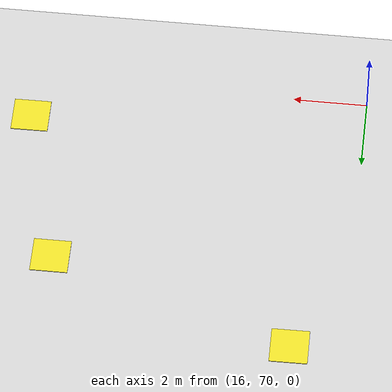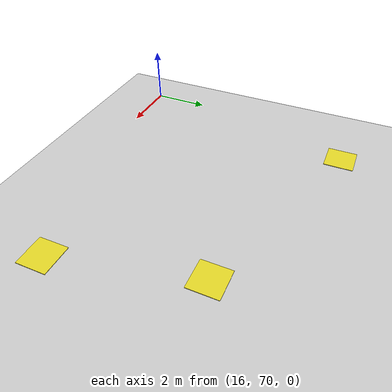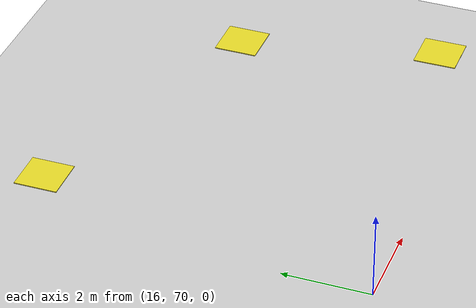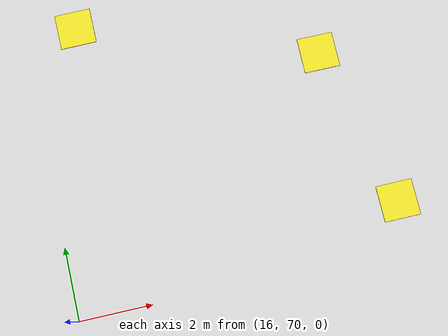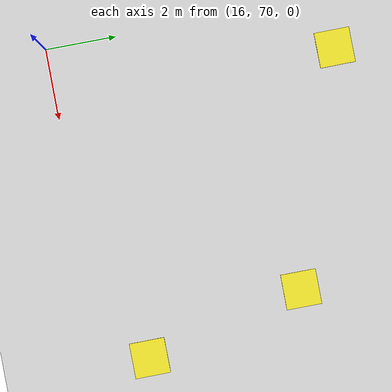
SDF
<sdf version="1.6">
 <world name="default">
  <model name="ground_plane">
   <pose>0 0 -1 0 -0 0</pose>
   <static>1</static>
   <link name="link">
    <collision name="collision">
     <geometry><plane><normal>0 0 1</normal><size>100 100</size></plane></geometry>
     <surface><friction><ode><mu>100</mu><mu2>50</mu2></ode></friction></surface>
    </collision>
    <visual name="visual">
     <cast_shadows>0</cast_shadows>
     <geometry><plane><normal>0 0 1</normal><size>100 100</size></plane></geometry>
     <material>
      <script><uri>file://media/materials/scripts/gazebo.material</uri><name>Gazebo/Grey</name></script>
     </material>
    </visual>
   </link>
  </model>
  <model name="YAC_airport_clone_0">
   <link name="my_box">
    <inertial>
     <mass>1</mass>
     <inertia><ixx>1</ixx><ixy>0</ixy><ixz>0</ixz><iyy>100</iyy><iyz>0</iyz><izz>1</izz></inertia>
    </inertial>
    <visual name="my_box_visual">
     <pose>0 0 1 0 -0 0</pose>
     <geometry><box><size>1 1 0.02</size></box></geometry>
     <material>
      <script><name>Gazebo/Yellow</name><uri>file://media/materials/scripts/gazebo.material</uri></script>
      <ambient>1 1 0 1</ambient>
      <diffuse>1 1 0 1</diffuse>
      <specular>0 0 0 0</specular>
      <emissive>0 0 0 1</emissive>
      <shader type="vertex"><normal_map>__default__</normal_map></shader>
     </material>
    </visual>
    <collision name="my_box_collision">
     <pose>0 0 1 0 -0 0</pose>
     <geometry><box><size>1 1 0.02</size></box></geometry>
     <surface>
      <friction>
       <ode><mu>1</mu><mu2>1</mu2><fdir1>0 0 0</fdir1><slip1>0</slip1><slip2>0</slip2></ode>
       <torsional>
        <coefficient>1</coefficient>
        <patch_radius>0</patch_radius>
        <surface_radius>0</surface_radius>
        <use_patch_radius>1</use_patch_radius>
        <ode><slip>0</slip></ode>
       </torsional>
      </friction>
      <bounce><restitution_coefficient>0</restitution_coefficient><threshold>1e+06</threshold></bounce>
      <contact>
       <collide_without_contact>0</collide_without_contact>
       <collide_without_contact_bitmask>1</collide_without_contact_bitmask>
       <collide_bitmask>1</collide_bitmask>
       <ode>
        <soft_cfm>0</soft_cfm>
        <soft_erp>0.2</soft_erp>
        <kp>1e+13</kp>
        <kd>1</kd>
        <max_vel>0.01</max_vel>
        <min_depth>0</min_depth>
       </ode>
       <bullet>
        <split_impulse>1</split_impulse>
        <split_impulse_penetration_threshold>-0.01</split_impulse_penetration_threshold>
        <soft_cfm>0</soft_cfm>
        <soft_erp>0.2</soft_erp>
        <kp>1e+13</kp>
        <kd>1</kd>
       </bullet>
      </contact>
     </surface>
    </collision>
   </link>
   <static>0</static>
   <pose>23.9435 75.8089 -0.990001 2e-06 -0 0.001366</pose>
  </model>
  <model name="YAC_airport_clone_1">
   <link name="my_box">
    <inertial>
     <mass>1</mass>
     <inertia><ixx>1</ixx><ixy>0</ixy><ixz>0</ixz><iyy>100</iyy><iyz>0</iyz><izz>1</izz></inertia>
    </inertial>
    <visual name="my_box_visual">
     <pose>0 0 1 0 -0 0</pose>
     <geometry><box><size>1 1 0.02</size></box></geometry>
     <material>
      <script><name>Gazebo/Yellow</name><uri>file://media/materials/scripts/gazebo.material</uri></script>
      <ambient>1 1 0 1</ambient>
      <diffuse>1 1 0 1</diffuse>
      <specular>0 0 0 0</specular>
      <emissive>0 0 0 1</emissive>
      <shader type="vertex"><normal_map>__default__</normal_map></shader>
     </material>
    </visual>
    <collision name="my_box_collision">
     <pose>0 0 1 0 -0 0</pose>
     <geometry><box><size>1 1 0.02</size></box></geometry>
     <surface>
      <friction>
       <ode><mu>1</mu><mu2>1</mu2><fdir1>0 0 0</fdir1><slip1>0</slip1><slip2>0</slip2></ode>
       <torsional>
        <coefficient>1</coefficient>
        <patch_radius>0</patch_radius>
        <surface_radius>0</surface_radius>
        <use_patch_radius>1</use_patch_radius>
        <ode><slip>0</slip></ode>
       </torsional>
      </friction>
      <bounce><restitution_coefficient>0</restitution_coefficient><threshold>1e+06</threshold></bounce>
      <contact>
       <collide_without_contact>0</collide_without_contact>
       <collide_without_contact_bitmask>1</collide_without_contact_bitmask>
       <collide_bitmask>1</collide_bitmask>
       <ode>
        <soft_cfm>0</soft_cfm>
        <soft_erp>0.2</soft_erp>
        <kp>1e+13</kp>
        <kd>1</kd>
        <max_vel>0.01</max_vel>
        <min_depth>0</min_depth>
       </ode>
       <bullet>
        <split_impulse>1</split_impulse>
        <split_impulse_penetration_threshold>-0.01</split_impulse_penetration_threshold>
        <soft_cfm>0</soft_cfm>
        <soft_erp>0.2</soft_erp>
        <kp>1e+13</kp>
        <kd>1</kd>
       </bullet>
      </contact>
     </surface>
    </collision>
   </link>
   <static>0</static>
   <pose>25.0605 71.2712 -0.990001 2e-06 -0 0.007203</pose>
  </model>
  <model name="YAC_airport_clone_6">
   <link name="my_box">
    <inertial>
     <mass>1</mass>
     <inertia><ixx>1</ixx><ixy>0</ixy><ixz>0</ixz><iyy>100</iyy><iyz>0</iyz><izz>1</izz></inertia>
    </inertial>
    <visual name="my_box_visual">
     <pose>0 0 1 0 -0 0</pose>
     <geometry><box><size>1 1 0.02</size></box></geometry>
     <material>
      <script><name>Gazebo/Yellow</name><uri>file://media/materials/scripts/gazebo.material</uri></script>
      <ambient>1 1 0 1</ambient>
      <diffuse>1 1 0 1</diffuse>
      <specular>0 0 0 0</specular>
      <emissive>0 0 0 1</emissive>
      <shader type="vertex"><normal_map>__default__</normal_map></shader>
     </material>
    </visual>
    <collision name="my_box_collision">
     <pose>0 0 1 0 -0 0</pose>
     <geometry><box><size>1 1 0.02</size></box></geometry>
     <surface>
      <friction>
       <ode><mu>1</mu><mu2>1</mu2><fdir1>0 0 0</fdir1><slip1>0</slip1><slip2>0</slip2></ode>
       <torsional>
        <coefficient>1</coefficient>
        <patch_radius>0</patch_radius>
        <surface_radius>0</surface_radius>
        <use_patch_radius>1</use_patch_radius>
        <ode><slip>0</slip></ode>
       </torsional>
      </friction>
      <bounce><restitution_coefficient>0</restitution_coefficient><threshold>1e+06</threshold></bounce>
      <contact>
       <collide_without_contact>0</collide_without_contact>
       <collide_without_contact_bitmask>1</collide_without_contact_bitmask>
       <collide_bitmask>1</collide_bitmask>
       <ode>
        <soft_cfm>0</soft_cfm>
        <soft_erp>0.2</soft_erp>
        <kp>1e+13</kp>
        <kd>1</kd>
        <max_vel>0.01</max_vel>
        <min_depth>0</min_depth>
       </ode>
       <bullet>
        <split_impulse>1</split_impulse>
        <split_impulse_penetration_threshold>-0.01</split_impulse_penetration_threshold>
        <soft_cfm>0</soft_cfm>
        <soft_erp>0.2</soft_erp>
        <kp>1e+13</kp>
        <kd>1</kd>
       </bullet>
      </contact>
     </surface>
    </collision>
   </link>
   <static>0</static>
   <pose>17.4313 77.9915 -0.990001 -2e-06 -0 0.008305</pose>
  </model>
 </world>
</sdf>
